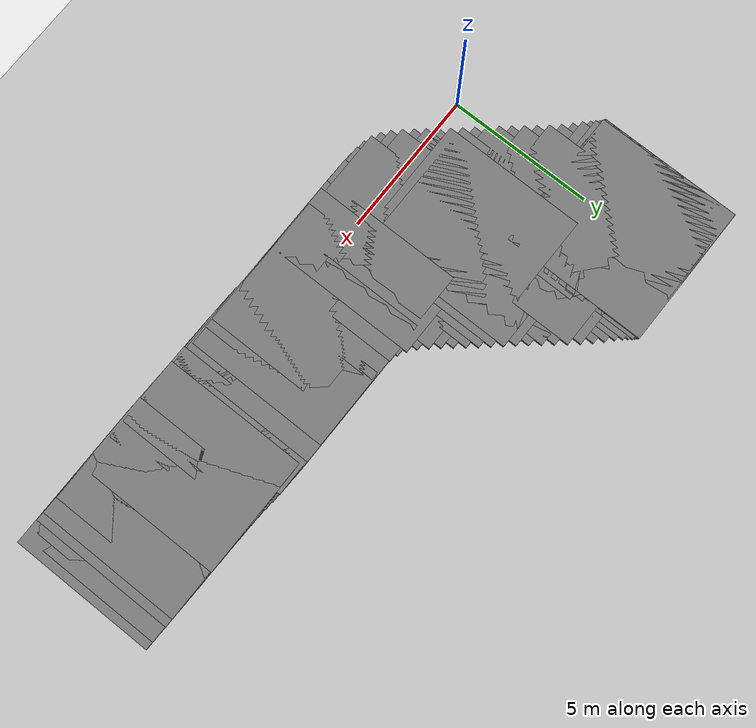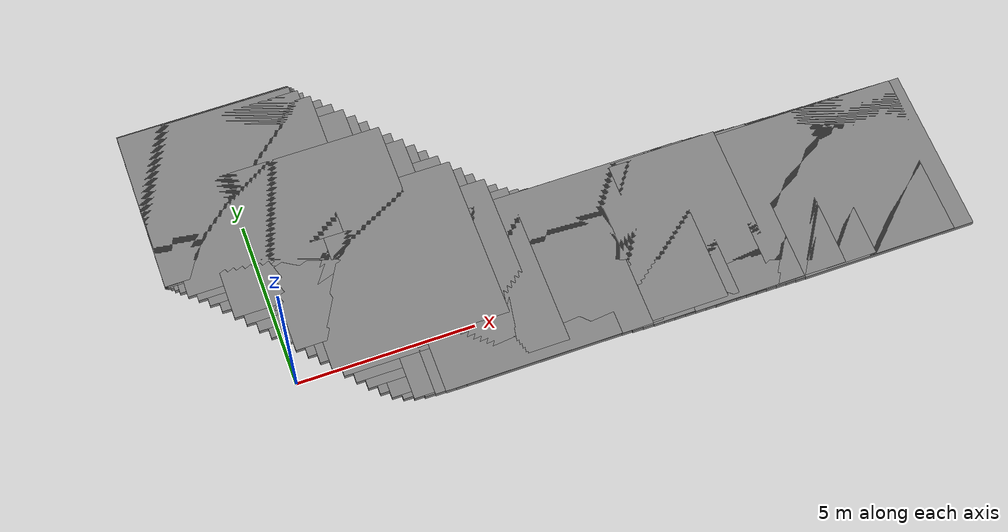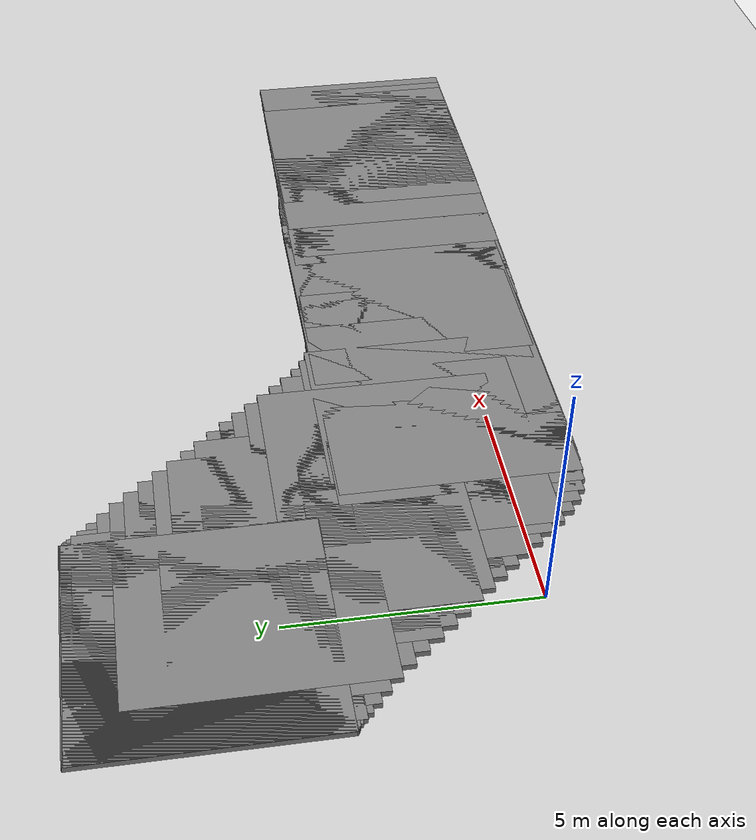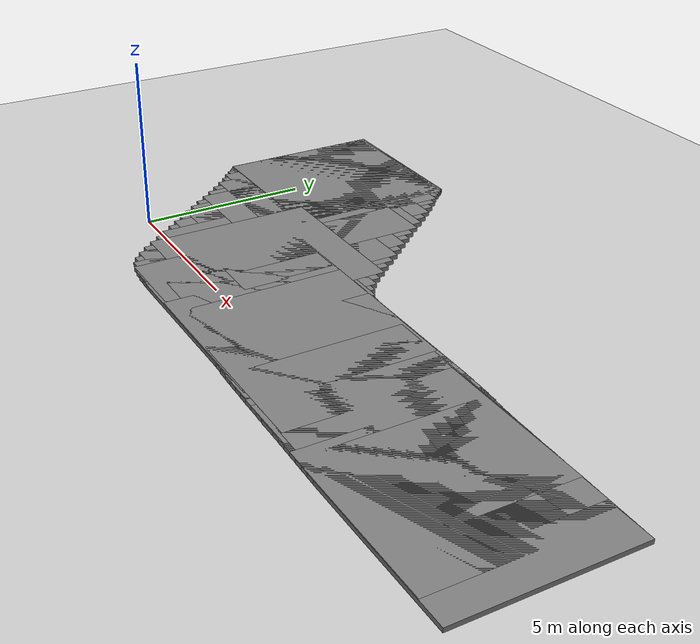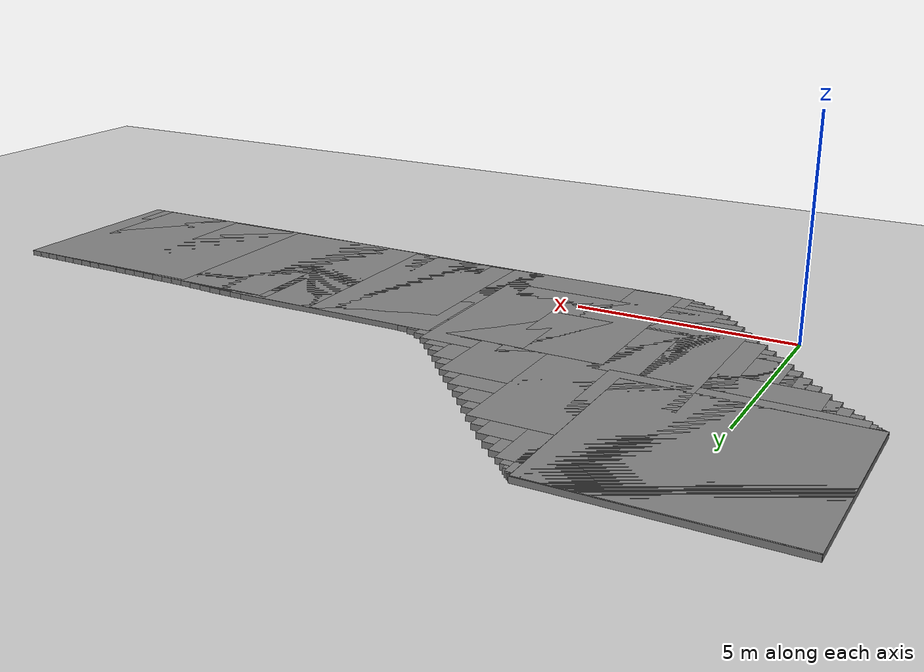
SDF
<sdf version="1.6">
 <world name="default">
  <include><uri>model://sun</uri></include>
  <include><uri>model://ground_plane</uri></include>
  <model name="road_segment_718">
   <static>true</static>
   <link name="link">
    <visual name="visual">
     <geometry><box><size>5.0 5.0 0.2</size></box></geometry>
     <material><ambient>0.5 0.5 0.5 1</ambient><diffuse>0.5 0.5 0.5 1</diffuse></material>
     <pose>16.38964202013392 0.7599901936794916 0.0 0 0 0</pose>
    </visual>
    <collision name="collision">
     <geometry><box><size>5.0 5.0 0.2</size></box></geometry>
     <pose>16.38964202013392 0.7599901936794916 0.0 0 0 0</pose>
    </collision>
   </link>
  </model>
  <model name="road_segment_719">
   <static>true</static>
   <link name="link">
    <visual name="visual">
     <geometry><box><size>5.0 5.0 0.2</size></box></geometry>
     <material><ambient>0.5 0.5 0.5 1</ambient><diffuse>0.5 0.5 0.5 1</diffuse></material>
     <pose>16.107715638061258 0.7657105499774945 0.0 0 0 0</pose>
    </visual>
    <collision name="collision">
     <geometry><box><size>5.0 5.0 0.2</size></box></geometry>
     <pose>16.107715638061258 0.7657105499774945 0.0 0 0 0</pose>
    </collision>
   </link>
  </model>
  <model name="road_segment_720">
   <static>true</static>
   <link name="link">
    <visual name="visual">
     <geometry><box><size>5.0 5.0 0.2</size></box></geometry>
     <material><ambient>0.5 0.5 0.5 1</ambient><diffuse>0.5 0.5 0.5 1</diffuse></material>
     <pose>15.826019024860138 0.7718395031513341 0.0 0 0 0</pose>
    </visual>
    <collision name="collision">
     <geometry><box><size>5.0 5.0 0.2</size></box></geometry>
     <pose>15.826019024860138 0.7718395031513341 0.0 0 0 0</pose>
    </collision>
   </link>
  </model>
  <model name="road_segment_721">
   <static>true</static>
   <link name="link">
    <visual name="visual">
     <geometry><box><size>5.0 5.0 0.2</size></box></geometry>
     <material><ambient>0.5 0.5 0.5 1</ambient><diffuse>0.5 0.5 0.5 1</diffuse></material>
     <pose>15.54156518542904 0.7771512625662423 0.0 0 0 0</pose>
    </visual>
    <collision name="collision">
     <geometry><box><size>5.0 5.0 0.2</size></box></geometry>
     <pose>15.54156518542904 0.7771512625662423 0.0 0 0 0</pose>
    </collision>
   </link>
  </model>
  <model name="road_segment_722">
   <static>true</static>
   <link name="link">
    <visual name="visual">
     <geometry><box><size>5.0 5.0 0.2</size></box></geometry>
     <material><ambient>0.5 0.5 0.5 1</ambient><diffuse>0.5 0.5 0.5 1</diffuse></material>
     <pose>15.252975506636643 0.7832802157400818 0.0 0 0 0</pose>
    </visual>
    <collision name="collision">
     <geometry><box><size>5.0 5.0 0.2</size></box></geometry>
     <pose>15.252975506636643 0.7832802157400818 0.0 0 0 0</pose>
    </collision>
   </link>
  </model>
  <model name="road_segment_723">
   <static>true</static>
   <link name="link">
    <visual name="visual">
     <geometry><box><size>5.0 5.0 0.2</size></box></geometry>
     <material><ambient>0.5 0.5 0.5 1</ambient><diffuse>0.5 0.5 0.5 1</diffuse></material>
     <pose>14.963466752456023 0.7890005720380847 0.0 0 0 0</pose>
    </visual>
    <collision name="collision">
     <geometry><box><size>5.0 5.0 0.2</size></box></geometry>
     <pose>14.963466752456023 0.7890005720380847 0.0 0 0 0</pose>
    </collision>
   </link>
  </model>
  <model name="road_segment_724">
   <static>true</static>
   <link name="link">
    <visual name="visual">
     <geometry><box><size>5.0 5.0 0.2</size></box></geometry>
     <material><ambient>0.5 0.5 0.5 1</ambient><diffuse>0.5 0.5 0.5 1</diffuse></material>
     <pose>14.674417535953186 0.7947209283360877 0.0 0 0 0</pose>
    </visual>
    <collision name="collision">
     <geometry><box><size>5.0 5.0 0.2</size></box></geometry>
     <pose>14.674417535953186 0.7947209283360877 0.0 0 0 0</pose>
    </collision>
   </link>
  </model>
  <model name="road_segment_725">
   <static>true</static>
   <link name="link">
    <visual name="visual">
     <geometry><box><size>5.0 5.0 0.2</size></box></geometry>
     <material><ambient>0.5 0.5 0.5 1</ambient><diffuse>0.5 0.5 0.5 1</diffuse></material>
     <pose>14.384449244062125 0.8004412846340908 0.0 0 0 0</pose>
    </visual>
    <collision name="collision">
     <geometry><box><size>5.0 5.0 0.2</size></box></geometry>
     <pose>14.384449244062125 0.8004412846340908 0.0 0 0 0</pose>
    </collision>
   </link>
  </model>
  <model name="road_segment_726">
   <static>true</static>
   <link name="link">
    <visual name="visual">
     <geometry><box><size>5.0 5.0 0.2</size></box></geometry>
     <material><ambient>0.5 0.5 0.5 1</ambient><diffuse>0.5 0.5 0.5 1</diffuse></material>
     <pose>14.093561876750188 0.8057530440489988 0.0 0 0 0</pose>
    </visual>
    <collision name="collision">
     <geometry><box><size>5.0 5.0 0.2</size></box></geometry>
     <pose>14.093561876750188 0.8057530440489988 0.0 0 0 0</pose>
    </collision>
   </link>
  </model>
  <model name="road_segment_727">
   <static>true</static>
   <link name="link">
    <visual name="visual">
     <geometry><box><size>5.0 5.0 0.2</size></box></geometry>
     <material><ambient>0.5 0.5 0.5 1</ambient><diffuse>0.5 0.5 0.5 1</diffuse></material>
     <pose>13.796470750428954 0.8037100596552996 0.0 0 0 0</pose>
    </visual>
    <collision name="collision">
     <geometry><box><size>5.0 5.0 0.2</size></box></geometry>
     <pose>13.796470750428954 0.8037100596552996 0.0 0 0 0</pose>
    </collision>
   </link>
  </model>
  <model name="road_segment_728">
   <static>true</static>
   <link name="link">
    <visual name="visual">
     <geometry><box><size>5.0 5.0 0.2</size></box></geometry>
     <material><ambient>0.5 0.5 0.5 1</ambient><diffuse>0.5 0.5 0.5 1</diffuse></material>
     <pose>13.50190708149881 0.811473400347002 0.0 0 0 0</pose>
    </visual>
    <collision name="collision">
     <geometry><box><size>5.0 5.0 0.2</size></box></geometry>
     <pose>13.50190708149881 0.811473400347002 0.0 0 0 0</pose>
    </collision>
   </link>
  </model>
  <model name="road_segment_729">
   <static>true</static>
   <link name="link">
    <visual name="visual">
     <geometry><box><size>5.0 5.0 0.2</size></box></geometry>
     <material><ambient>0.5 0.5 0.5 1</ambient><diffuse>0.5 0.5 0.5 1</diffuse></material>
     <pose>13.205275492855364 0.8196453379145408 0.0 0 0 0</pose>
    </visual>
    <collision name="collision">
     <geometry><box><size>5.0 5.0 0.2</size></box></geometry>
     <pose>13.205275492855364 0.8196453379145408 0.0 0 0 0</pose>
    </collision>
   </link>
  </model>
  <model name="road_segment_730">
   <static>true</static>
   <link name="link">
    <visual name="visual">
     <geometry><box><size>5.0 5.0 0.2</size></box></geometry>
     <material><ambient>0.5 0.5 0.5 1</ambient><diffuse>0.5 0.5 0.5 1</diffuse></material>
     <pose>12.906575984563926 0.8208711285493087 0.0 0 0 0</pose>
    </visual>
    <collision name="collision">
     <geometry><box><size>5.0 5.0 0.2</size></box></geometry>
     <pose>12.906575984563926 0.8208711285493087 0.0 0 0 0</pose>
    </collision>
   </link>
  </model>
  <model name="road_segment_731">
   <static>true</static>
   <link name="link">
    <visual name="visual">
     <geometry><box><size>5.0 5.0 0.2</size></box></geometry>
     <material><ambient>0.5 0.5 0.5 1</ambient><diffuse>0.5 0.5 0.5 1</diffuse></material>
     <pose>12.609255089403797 0.8261828879642167 0.0 0 0 0</pose>
    </visual>
    <collision name="collision">
     <geometry><box><size>5.0 5.0 0.2</size></box></geometry>
     <pose>12.609255089403797 0.8261828879642167 0.0 0 0 0</pose>
    </collision>
   </link>
  </model>
  <model name="road_segment_732">
   <static>true</static>
   <link name="link">
    <visual name="visual">
     <geometry><box><size>5.0 5.0 0.2</size></box></geometry>
     <material><ambient>0.5 0.5 0.5 1</ambient><diffuse>0.5 0.5 0.5 1</diffuse></material>
     <pose>12.307109048300392 0.835172019290687 0.0 0 0 0</pose>
    </visual>
    <collision name="collision">
     <geometry><box><size>5.0 5.0 0.2</size></box></geometry>
     <pose>12.307109048300392 0.835172019290687 0.0 0 0 0</pose>
    </collision>
   </link>
  </model>
  <model name="road_segment_733">
   <static>true</static>
   <link name="link">
    <visual name="visual">
     <geometry><box><size>5.0 5.0 0.2</size></box></geometry>
     <material><ambient>0.5 0.5 0.5 1</ambient><diffuse>0.5 0.5 0.5 1</diffuse></material>
     <pose>12.00680115803874 0.8392579880708271 0.0 0 0 0</pose>
    </visual>
    <collision name="collision">
     <geometry><box><size>5.0 5.0 0.2</size></box></geometry>
     <pose>12.00680115803874 0.8392579880708271 0.0 0 0 0</pose>
    </collision>
   </link>
  </model>
  <model name="road_segment_734">
   <static>true</static>
   <link name="link">
    <visual name="visual">
     <geometry><box><size>5.0 5.0 0.2</size></box></geometry>
     <material><ambient>0.5 0.5 0.5 1</ambient><diffuse>0.5 0.5 0.5 1</diffuse></material>
     <pose>11.704655116967986 0.8470213287625294 0.0 0 0 0</pose>
    </visual>
    <collision name="collision">
     <geometry><box><size>5.0 5.0 0.2</size></box></geometry>
     <pose>11.704655116967986 0.8470213287625294 0.0 0 0 0</pose>
    </collision>
   </link>
  </model>
  <model name="road_segment_735">
   <static>true</static>
   <link name="link">
    <visual name="visual">
     <geometry><box><size>5.0 5.0 0.2</size></box></geometry>
     <material><ambient>0.5 0.5 0.5 1</ambient><diffuse>0.5 0.5 0.5 1</diffuse></material>
     <pose>11.402049538186795 0.8588706382343719 0.0 0 0 0</pose>
    </visual>
    <collision name="collision">
     <geometry><box><size>5.0 5.0 0.2</size></box></geometry>
     <pose>11.402049538186795 0.8588706382343719 0.0 0 0 0</pose>
    </collision>
   </link>
  </model>
  <model name="road_segment_736">
   <static>true</static>
   <link name="link">
    <visual name="visual">
     <geometry><box><size>5.0 5.0 0.2</size></box></geometry>
     <material><ambient>0.5 0.5 0.5 1</ambient><diffuse>0.5 0.5 0.5 1</diffuse></material>
     <pose>11.094848582333865 0.8805262727843577 0.0 0 0 0</pose>
    </visual>
    <collision name="collision">
     <geometry><box><size>5.0 5.0 0.2</size></box></geometry>
     <pose>11.094848582333865 0.8805262727843577 0.0 0 0 0</pose>
    </collision>
   </link>
  </model>
  <model name="road_segment_737">
   <static>true</static>
   <link name="link">
    <visual name="visual">
     <geometry><box><size>5.0 5.0 0.2</size></box></geometry>
     <material><ambient>0.5 0.5 0.5 1</ambient><diffuse>0.5 0.5 0.5 1</diffuse></material>
     <pose>10.782592711731413 0.9095366511429509 0.0 0 0 0</pose>
    </visual>
    <collision name="collision">
     <geometry><box><size>5.0 5.0 0.2</size></box></geometry>
     <pose>10.782592711731413 0.9095366511429509 0.0 0 0 0</pose>
    </collision>
   </link>
  </model>
  <model name="road_segment_738">
   <static>true</static>
   <link name="link">
    <visual name="visual">
     <geometry><box><size>5.0 5.0 0.2</size></box></geometry>
     <material><ambient>0.5 0.5 0.5 1</ambient><diffuse>0.5 0.5 0.5 1</diffuse></material>
     <pose>10.47125591654984 0.9279235106644695 0.0 0 0 0</pose>
    </visual>
    <collision name="collision">
     <geometry><box><size>5.0 5.0 0.2</size></box></geometry>
     <pose>10.47125591654984 0.9279235106644695 0.0 0 0 0</pose>
    </collision>
   </link>
  </model>
  <model name="road_segment_739">
   <static>true</static>
   <link name="link">
    <visual name="visual">
     <geometry><box><size>5.0 5.0 0.2</size></box></geometry>
     <material><ambient>0.5 0.5 0.5 1</ambient><diffuse>0.5 0.5 0.5 1</diffuse></material>
     <pose>10.158540508269601 0.9373212388667762 0.0 0 0 0</pose>
    </visual>
    <collision name="collision">
     <geometry><box><size>5.0 5.0 0.2</size></box></geometry>
     <pose>10.158540508269601 0.9373212388667762 0.0 0 0 0</pose>
    </collision>
   </link>
  </model>
  <model name="road_segment_740">
   <static>true</static>
   <link name="link">
    <visual name="visual">
     <geometry><box><size>5.0 5.0 0.2</size></box></geometry>
     <material><ambient>0.5 0.5 0.5 1</ambient><diffuse>0.5 0.5 0.5 1</diffuse></material>
     <pose>9.845365562246272 0.9495791452217134 0.0 0 0 0</pose>
    </visual>
    <collision name="collision">
     <geometry><box><size>5.0 5.0 0.2</size></box></geometry>
     <pose>9.845365562246272 0.9495791452217134 0.0 0 0 0</pose>
    </collision>
   </link>
  </model>
  <model name="road_segment_741">
   <static>true</static>
   <link name="link">
    <visual name="visual">
     <geometry><box><size>5.0 5.0 0.2</size></box></geometry>
     <material><ambient>0.5 0.5 0.5 1</ambient><diffuse>0.5 0.5 0.5 1</diffuse></material>
     <pose>9.529203621154068 0.9561166952713895 0.0 0 0 0</pose>
    </visual>
    <collision name="collision">
     <geometry><box><size>5.0 5.0 0.2</size></box></geometry>
     <pose>9.529203621154068 0.9561166952713895 0.0 0 0 0</pose>
    </collision>
   </link>
  </model>
  <model name="road_segment_742">
   <static>true</static>
   <link name="link">
    <visual name="visual">
     <geometry><box><size>5.0 5.0 0.2</size></box></geometry>
     <material><ambient>0.5 0.5 0.5 1</ambient><diffuse>0.5 0.5 0.5 1</diffuse></material>
     <pose>9.20936537844366 0.9557080983955529 0.0 0 0 0</pose>
    </visual>
    <collision name="collision">
     <geometry><box><size>5.0 5.0 0.2</size></box></geometry>
     <pose>9.20936537844366 0.9557080983955529 0.0 0 0 0</pose>
    </collision>
   </link>
  </model>
  <model name="road_segment_743">
   <static>true</static>
   <link name="link">
    <visual name="visual">
     <geometry><box><size>5.0 5.0 0.2</size></box></geometry>
     <material><ambient>0.5 0.5 0.5 1</ambient><diffuse>0.5 0.5 0.5 1</diffuse></material>
     <pose>8.889756904572144 0.9508049358564813 0.0 0 0 0</pose>
    </visual>
    <collision name="collision">
     <geometry><box><size>5.0 5.0 0.2</size></box></geometry>
     <pose>8.889756904572144 0.9508049358564813 0.0 0 0 0</pose>
    </collision>
   </link>
  </model>
  <model name="road_segment_744">
   <static>true</static>
   <link name="link">
    <visual name="visual">
     <geometry><box><size>5.0 5.0 0.2</size></box></geometry>
     <material><ambient>0.5 0.5 0.5 1</ambient><diffuse>0.5 0.5 0.5 1</diffuse></material>
     <pose>8.570148430700627 0.944267385799547 0.0 0 0 0</pose>
    </visual>
    <collision name="collision">
     <geometry><box><size>5.0 5.0 0.2</size></box></geometry>
     <pose>8.570148430700627 0.944267385799547 0.0 0 0 0</pose>
    </collision>
   </link>
  </model>
  <model name="road_segment_745">
   <static>true</static>
   <link name="link">
    <visual name="visual">
     <geometry><box><size>5.0 5.0 0.2</size></box></geometry>
     <material><ambient>0.5 0.5 0.5 1</ambient><diffuse>0.5 0.5 0.5 1</diffuse></material>
     <pose>8.250769725668006 0.9352782544803351 0.0 0 0 0</pose>
    </visual>
    <collision name="collision">
     <geometry><box><size>5.0 5.0 0.2</size></box></geometry>
     <pose>8.250769725668006 0.9352782544803351 0.0 0 0 0</pose>
    </collision>
   </link>
  </model>
  <model name="road_segment_746">
   <static>true</static>
   <link name="link">
    <visual name="visual">
     <geometry><box><size>5.0 5.0 0.2</size></box></geometry>
     <material><ambient>0.5 0.5 0.5 1</ambient><diffuse>0.5 0.5 0.5 1</diffuse></material>
     <pose>7.934148246865363 0.9238375418843292 0.0 0 0 0</pose>
    </visual>
    <collision name="collision">
     <geometry><box><size>5.0 5.0 0.2</size></box></geometry>
     <pose>7.934148246865363 0.9238375418843292 0.0 0 0 0</pose>
    </collision>
   </link>
  </model>
  <model name="road_segment_747">
   <static>true</static>
   <link name="link">
    <visual name="visual">
     <geometry><box><size>5.0 5.0 0.2</size></box></geometry>
     <material><ambient>0.5 0.5 0.5 1</ambient><diffuse>0.5 0.5 0.5 1</diffuse></material>
     <pose>7.62235191397335 0.9132140230472546 0.0 0 0 0</pose>
    </visual>
    <collision name="collision">
     <geometry><box><size>5.0 5.0 0.2</size></box></geometry>
     <pose>7.62235191397335 0.9132140230472546 0.0 0 0 0</pose>
    </collision>
   </link>
  </model>
  <model name="road_segment_748">
   <static>true</static>
   <link name="link">
    <visual name="visual">
     <geometry><box><size>5.0 5.0 0.2</size></box></geometry>
     <material><ambient>0.5 0.5 0.5 1</ambient><diffuse>0.5 0.5 0.5 1</diffuse></material>
     <pose>7.316529571251738 0.8989131323058763 0.0 0 0 0</pose>
    </visual>
    <collision name="collision">
     <geometry><box><size>5.0 5.0 0.2</size></box></geometry>
     <pose>7.316529571251738 0.8989131323058763 0.0 0 0 0</pose>
    </collision>
   </link>
  </model>
  <model name="road_segment_749">
   <static>true</static>
   <link name="link">
    <visual name="visual">
     <geometry><box><size>5.0 5.0 0.2</size></box></geometry>
     <material><ambient>0.5 0.5 0.5 1</ambient><diffuse>0.5 0.5 0.5 1</diffuse></material>
     <pose>7.015072836730315 0.8874724197171285 0.0 0 0 0</pose>
    </visual>
    <collision name="collision">
     <geometry><box><size>5.0 5.0 0.2</size></box></geometry>
     <pose>7.015072836730315 0.8874724197171285 0.0 0 0 0</pose>
    </collision>
   </link>
  </model>
  <model name="road_segment_750">
   <static>true</static>
   <link name="link">
    <visual name="visual">
     <geometry><box><size>5.0 5.0 0.2</size></box></geometry>
     <material><ambient>0.5 0.5 0.5 1</ambient><diffuse>0.5 0.5 0.5 1</diffuse></material>
     <pose>6.714764946468664 0.8866552259581972 0.0 0 0 0</pose>
    </visual>
    <collision name="collision">
     <geometry><box><size>5.0 5.0 0.2</size></box></geometry>
     <pose>6.714764946468664 0.8866552259581972 0.0 0 0 0</pose>
    </collision>
   </link>
  </model>
  <model name="road_segment_751">
   <static>true</static>
   <link name="link">
    <visual name="visual">
     <geometry><box><size>5.0 5.0 0.2</size></box></geometry>
     <material><ambient>0.5 0.5 0.5 1</ambient><diffuse>0.5 0.5 0.5 1</diffuse></material>
     <pose>6.421350121798292 0.8899240009866644 0.0 0 0 0</pose>
    </visual>
    <collision name="collision">
     <geometry><box><size>5.0 5.0 0.2</size></box></geometry>
     <pose>6.421350121798292 0.8899240009866644 0.0 0 0 0</pose>
    </collision>
   </link>
  </model>
  <model name="road_segment_752">
   <static>true</static>
   <link name="link">
    <visual name="visual">
     <geometry><box><size>5.0 5.0 0.2</size></box></geometry>
     <material><ambient>0.5 0.5 0.5 1</ambient><diffuse>0.5 0.5 0.5 1</diffuse></material>
     <pose>6.130922292196791 0.8952357604015726 0.0 0 0 0</pose>
    </visual>
    <collision name="collision">
     <geometry><box><size>5.0 5.0 0.2</size></box></geometry>
     <pose>6.130922292196791 0.8952357604015726 0.0 0 0 0</pose>
    </collision>
   </link>
  </model>
  <model name="road_segment_753">
   <static>true</static>
   <link name="link">
    <visual name="visual">
     <geometry><box><size>5.0 5.0 0.2</size></box></geometry>
     <material><ambient>0.5 0.5 0.5 1</ambient><diffuse>0.5 0.5 0.5 1</diffuse></material>
     <pose>5.846008915055253 0.9066764729975785 0.0 0 0 0</pose>
    </visual>
    <collision name="collision">
     <geometry><box><size>5.0 5.0 0.2</size></box></geometry>
     <pose>5.846008915055253 0.9066764729975785 0.0 0 0 0</pose>
    </collision>
   </link>
  </model>
  <model name="road_segment_754">
   <static>true</static>
   <link name="link">
    <visual name="visual">
     <geometry><box><size>5.0 5.0 0.2</size></box></geometry>
     <material><ambient>0.5 0.5 0.5 1</ambient><diffuse>0.5 0.5 0.5 1</diffuse></material>
     <pose>5.561784844463047 0.9311922856929367 0.0 0 0 0</pose>
    </visual>
    <collision name="collision">
     <geometry><box><size>5.0 5.0 0.2</size></box></geometry>
     <pose>5.561784844463047 0.9311922856929367 0.0 0 0 0</pose>
    </collision>
   </link>
  </model>
  <model name="road_segment_755">
   <static>true</static>
   <link name="link">
    <visual name="visual">
     <geometry><box><size>5.0 5.0 0.2</size></box></geometry>
     <material><ambient>0.5 0.5 0.5 1</ambient><diffuse>0.5 0.5 0.5 1</diffuse></material>
     <pose>5.280777537811261 0.9745035547929082 0.0 0 0 0</pose>
    </visual>
    <collision name="collision">
     <geometry><box><size>5.0 5.0 0.2</size></box></geometry>
     <pose>5.280777537811261 0.9745035547929082 0.0 0 0 0</pose>
    </collision>
   </link>
  </model>
  <model name="road_segment_756">
   <static>true</static>
   <link name="link">
    <visual name="visual">
     <geometry><box><size>5.0 5.0 0.2</size></box></geometry>
     <material><ambient>0.5 0.5 0.5 1</ambient><diffuse>0.5 0.5 0.5 1</diffuse></material>
     <pose>5.005973990168767 1.0541799460673384 0.0 0 0 0</pose>
    </visual>
    <collision name="collision">
     <geometry><box><size>5.0 5.0 0.2</size></box></geometry>
     <pose>5.005973990168767 1.0541799460673384 0.0 0 0 0</pose>
    </collision>
   </link>
  </model>
  <model name="road_segment_757">
   <static>true</static>
   <link name="link">
    <visual name="visual">
     <geometry><box><size>5.0 5.0 0.2</size></box></geometry>
     <material><ambient>0.5 0.5 0.5 1</ambient><diffuse>0.5 0.5 0.5 1</diffuse></material>
     <pose>4.736225357308449 1.2004576285095887 0.0 0 0 0</pose>
    </visual>
    <collision name="collision">
     <geometry><box><size>5.0 5.0 0.2</size></box></geometry>
     <pose>4.736225357308449 1.2004576285095887 0.0 0 0 0</pose>
    </collision>
   </link>
  </model>
  <model name="road_segment_758">
   <static>true</static>
   <link name="link">
    <visual name="visual">
     <geometry><box><size>5.0 5.0 0.2</size></box></geometry>
     <material><ambient>0.5 0.5 0.5 1</ambient><diffuse>0.5 0.5 0.5 1</diffuse></material>
     <pose>4.480952162147366 1.4100678270839335 0.0 0 0 0</pose>
    </visual>
    <collision name="collision">
     <geometry><box><size>5.0 5.0 0.2</size></box></geometry>
     <pose>4.480952162147366 1.4100678270839335 0.0 0 0 0</pose>
    </collision>
   </link>
  </model>
  <model name="road_segment_759">
   <static>true</static>
   <link name="link">
    <visual name="visual">
     <geometry><box><size>5.0 5.0 0.2</size></box></geometry>
     <material><ambient>0.5 0.5 0.5 1</ambient><diffuse>0.5 0.5 0.5 1</diffuse></material>
     <pose>4.2344101833540115 1.6691182479393476 0.0 0 0 0</pose>
    </visual>
    <collision name="collision">
     <geometry><box><size>5.0 5.0 0.2</size></box></geometry>
     <pose>4.2344101833540115 1.6691182479393476 0.0 0 0 0</pose>
    </collision>
   </link>
  </model>
  <model name="road_segment_760">
   <static>true</static>
   <link name="link">
    <visual name="visual">
     <geometry><box><size>5.0 5.0 0.2</size></box></geometry>
     <material><ambient>0.5 0.5 0.5 1</ambient><diffuse>0.5 0.5 0.5 1</diffuse></material>
     <pose>3.993612425924816 1.9465555283162805 0.0 0 0 0</pose>
    </visual>
    <collision name="collision">
     <geometry><box><size>5.0 5.0 0.2</size></box></geometry>
     <pose>3.993612425924816 1.9465555283162805 0.0 0 0 0</pose>
    </collision>
   </link>
  </model>
  <model name="road_segment_761">
   <static>true</static>
   <link name="link">
    <visual name="visual">
     <geometry><box><size>5.0 5.0 0.2</size></box></geometry>
     <material><ambient>0.5 0.5 0.5 1</ambient><diffuse>0.5 0.5 0.5 1</diffuse></material>
     <pose>3.749368135651004 2.234207730654451 0.0 0 0 0</pose>
    </visual>
    <collision name="collision">
     <geometry><box><size>5.0 5.0 0.2</size></box></geometry>
     <pose>3.749368135651004 2.234207730654451 0.0 0 0 0</pose>
    </collision>
   </link>
  </model>
  <model name="road_segment_762">
   <static>true</static>
   <link name="link">
    <visual name="visual">
     <geometry><box><size>5.0 5.0 0.2</size></box></geometry>
     <material><ambient>0.5 0.5 0.5 1</ambient><diffuse>0.5 0.5 0.5 1</diffuse></material>
     <pose>3.5069619962515985 2.530849064319092 0.0 0 0 0</pose>
    </visual>
    <collision name="collision">
     <geometry><box><size>5.0 5.0 0.2</size></box></geometry>
     <pose>3.5069619962515985 2.530849064319092 0.0 0 0 0</pose>
    </collision>
   </link>
  </model>
  <model name="road_segment_763">
   <static>true</static>
   <link name="link">
    <visual name="visual">
     <geometry><box><size>5.0 5.0 0.2</size></box></geometry>
     <material><ambient>0.5 0.5 0.5 1</ambient><diffuse>0.5 0.5 0.5 1</diffuse></material>
     <pose>3.264555856819541 2.823404429196334 0.0 0 0 0</pose>
    </visual>
    <collision name="collision">
     <geometry><box><size>5.0 5.0 0.2</size></box></geometry>
     <pose>3.264555856819541 2.823404429196334 0.0 0 0 0</pose>
    </collision>
   </link>
  </model>
  <model name="road_segment_764">
   <static>true</static>
   <link name="link">
    <visual name="visual">
     <geometry><box><size>5.0 5.0 0.2</size></box></geometry>
     <material><ambient>0.5 0.5 0.5 1</ambient><diffuse>0.5 0.5 0.5 1</diffuse></material>
     <pose>3.0175543403484 3.1094222440166424 0.0 0 0 0</pose>
    </visual>
    <collision name="collision">
     <geometry><box><size>5.0 5.0 0.2</size></box></geometry>
     <pose>3.0175543403484 3.1094222440166424 0.0 0 0 0</pose>
    </collision>
   </link>
  </model>
  <model name="road_segment_765">
   <static>true</static>
   <link name="link">
    <visual name="visual">
     <geometry><box><size>5.0 5.0 0.2</size></box></geometry>
     <material><ambient>0.5 0.5 0.5 1</ambient><diffuse>0.5 0.5 0.5 1</diffuse></material>
     <pose>2.76572767796663 3.3974830432306495 0.0 0 0 0</pose>
    </visual>
    <collision name="collision">
     <geometry><box><size>5.0 5.0 0.2</size></box></geometry>
     <pose>2.76572767796663 3.3974830432306495 0.0 0 0 0</pose>
    </collision>
   </link>
  </model>
  <model name="road_segment_766">
   <static>true</static>
   <link name="link">
    <visual name="visual">
     <geometry><box><size>5.0 5.0 0.2</size></box></geometry>
     <material><ambient>0.5 0.5 0.5 1</ambient><diffuse>0.5 0.5 0.5 1</diffuse></material>
     <pose>2.514360553295299 3.6814578736645167 0.0 0 0 0</pose>
    </visual>
    <collision name="collision">
     <geometry><box><size>5.0 5.0 0.2</size></box></geometry>
     <pose>2.514360553295299 3.6814578736645167 0.0 0 0 0</pose>
    </collision>
   </link>
  </model>
  <model name="road_segment_767">
   <static>true</static>
   <link name="link">
    <visual name="visual">
     <geometry><box><size>5.0 5.0 0.2</size></box></geometry>
     <material><ambient>0.5 0.5 0.5 1</ambient><diffuse>0.5 0.5 0.5 1</diffuse></material>
     <pose>2.2623041220746347 3.976464819811295 0.0 0 0 0</pose>
    </visual>
    <collision name="collision">
     <geometry><box><size>5.0 5.0 0.2</size></box></geometry>
     <pose>2.2623041220746347 3.976464819811295 0.0 0 0 0</pose>
    </collision>
   </link>
  </model>
  <model name="road_segment_768">
   <static>true</static>
   <link name="link">
    <visual name="visual">
     <geometry><box><size>5.0 5.0 0.2</size></box></geometry>
     <material><ambient>0.5 0.5 0.5 1</ambient><diffuse>0.5 0.5 0.5 1</diffuse></material>
     <pose>2.0123156105019677 4.278417912890844 0.0 0 0 0</pose>
    </visual>
    <collision name="collision">
     <geometry><box><size>5.0 5.0 0.2</size></box></geometry>
     <pose>2.0123156105019677 4.278417912890844 0.0 0 0 0</pose>
    </collision>
   </link>
  </model>
  <model name="road_segment_769">
   <static>true</static>
   <link name="link">
    <visual name="visual">
     <geometry><box><size>5.0 5.0 0.2</size></box></geometry>
     <material><ambient>0.5 0.5 0.5 1</ambient><diffuse>0.5 0.5 0.5 1</diffuse></material>
     <pose>1.7597996415708657 4.583639780991602 0.0 0 0 0</pose>
    </visual>
    <collision name="collision">
     <geometry><box><size>5.0 5.0 0.2</size></box></geometry>
     <pose>1.7597996415708657 4.583639780991602 0.0 0 0 0</pose>
    </collision>
   </link>
  </model>
  <model name="road_segment_770">
   <static>true</static>
   <link name="link">
    <visual name="visual">
     <geometry><box><size>5.0 5.0 0.2</size></box></geometry>
     <material><ambient>0.5 0.5 0.5 1</ambient><diffuse>0.5 0.5 0.5 1</diffuse></material>
     <pose>1.5072836726397632 4.8851842771953145 0.0 0 0 0</pose>
    </visual>
    <collision name="collision">
     <geometry><box><size>5.0 5.0 0.2</size></box></geometry>
     <pose>1.5072836726397632 4.8851842771953145 0.0 0 0 0</pose>
    </collision>
   </link>
  </model>
  <model name="road_segment_771">
   <static>true</static>
   <link name="link">
    <visual name="visual">
     <geometry><box><size>5.0 5.0 0.2</size></box></geometry>
     <material><ambient>0.5 0.5 0.5 1</ambient><diffuse>0.5 0.5 0.5 1</diffuse></material>
     <pose>1.250861633218909 5.185911579640096 0.0 0 0 0</pose>
    </visual>
    <collision name="collision">
     <geometry><box><size>5.0 5.0 0.2</size></box></geometry>
     <pose>1.250861633218909 5.185911579640096 0.0 0 0 0</pose>
    </collision>
   </link>
  </model>
  <model name="road_segment_772">
   <static>true</static>
   <link name="link">
    <visual name="visual">
     <geometry><box><size>5.0 5.0 0.2</size></box></geometry>
     <material><ambient>0.5 0.5 0.5 1</ambient><diffuse>0.5 0.5 0.5 1</diffuse></material>
     <pose>0.9932907495056322 5.471929394460403 0.0 0 0 0</pose>
    </visual>
    <collision name="collision">
     <geometry><box><size>5.0 5.0 0.2</size></box></geometry>
     <pose>0.9932907495056322 5.471929394460403 0.0 0 0 0</pose>
    </collision>
   </link>
  </model>
  <model name="road_segment_773">
   <static>true</static>
   <link name="link">
    <visual name="visual">
     <geometry><box><size>5.0 5.0 0.2</size></box></geometry>
     <material><ambient>0.5 0.5 0.5 1</ambient><diffuse>0.5 0.5 0.5 1</diffuse></material>
     <pose>0.7435320068045104 5.721990683996606 0.0 0 0 0</pose>
    </visual>
    <collision name="collision">
     <geometry><box><size>5.0 5.0 0.2</size></box></geometry>
     <pose>0.7435320068045104 5.721990683996606 0.0 0 0 0</pose>
    </collision>
   </link>
  </model>
  <model name="road_segment_774">
   <static>true</static>
   <link name="link">
    <visual name="visual">
     <geometry><box><size>5.0 5.0 0.2</size></box></geometry>
     <material><ambient>0.5 0.5 0.5 1</ambient><diffuse>0.5 0.5 0.5 1</diffuse></material>
     <pose>0.5123845411639213 5.932418076329881 0.0 0 0 0</pose>
    </visual>
    <collision name="collision">
     <geometry><box><size>5.0 5.0 0.2</size></box></geometry>
     <pose>0.5123845411639213 5.932418076329881 0.0 0 0 0</pose>
    </collision>
   </link>
  </model>
  <model name="road_segment_775">
   <static>true</static>
   <link name="link">
    <visual name="visual">
     <geometry><box><size>5.0 5.0 0.2</size></box></geometry>
     <material><ambient>0.5 0.5 0.5 1</ambient><diffuse>0.5 0.5 0.5 1</diffuse></material>
     <pose>0.33867928864248725 6.111792105910865 0.0 0 0 0</pose>
    </visual>
    <collision name="collision">
     <geometry><box><size>5.0 5.0 0.2</size></box></geometry>
     <pose>0.33867928864248725 6.111792105910865 0.0 0 0 0</pose>
    </collision>
   </link>
  </model>
  <model name="road_segment_776">
   <static>true</static>
   <link name="link">
    <visual name="visual">
     <geometry><box><size>5.0 5.0 0.2</size></box></geometry>
     <material><ambient>0.5 0.5 0.5 1</ambient><diffuse>0.5 0.5 0.5 1</diffuse></material>
     <pose>0.22701162631194424 6.233145378774664 0.0 0 0 0</pose>
    </visual>
    <collision name="collision">
     <geometry><box><size>5.0 5.0 0.2</size></box></geometry>
     <pose>0.22701162631194424 6.233145378774664 0.0 0 0 0</pose>
    </collision>
   </link>
  </model>
  <model name="road_segment_777">
   <static>true</static>
   <link name="link">
    <visual name="visual">
     <geometry><box><size>5.0 5.0 0.2</size></box></geometry>
     <material><ambient>0.5 0.5 0.5 1</ambient><diffuse>0.5 0.5 0.5 1</diffuse></material>
     <pose>0.14544368367229524 6.327122660783213 0.0 0 0 0</pose>
    </visual>
    <collision name="collision">
     <geometry><box><size>5.0 5.0 0.2</size></box></geometry>
     <pose>0.14544368367229524 6.327122660783213 0.0 0 0 0</pose>
    </collision>
   </link>
  </model>
  <model name="road_segment_778">
   <static>true</static>
   <link name="link">
    <visual name="visual">
     <geometry><box><size>5.0 5.0 0.2</size></box></geometry>
     <material><ambient>0.5 0.5 0.5 1</ambient><diffuse>0.5 0.5 0.5 1</diffuse></material>
     <pose>0.08960985249069767 6.382691836238122 0.0 0 0 0</pose>
    </visual>
    <collision name="collision">
     <geometry><box><size>5.0 5.0 0.2</size></box></geometry>
     <pose>0.08960985249069767 6.382691836238122 0.0 0 0 0</pose>
    </collision>
   </link>
  </model>
  <model name="road_segment_779">
   <static>true</static>
   <link name="link">
    <visual name="visual">
     <geometry><box><size>5.0 5.0 0.2</size></box></geometry>
     <material><ambient>0.5 0.5 0.5 1</ambient><diffuse>0.5 0.5 0.5 1</diffuse></material>
     <pose>0.05353614266205568 6.407616245816575 0.0 0 0 0</pose>
    </visual>
    <collision name="collision">
     <geometry><box><size>5.0 5.0 0.2</size></box></geometry>
     <pose>0.05353614266205568 6.407616245816575 0.0 0 0 0</pose>
    </collision>
   </link>
  </model>
  <model name="road_segment_780">
   <static>true</static>
   <link name="link">
    <visual name="visual">
     <geometry><box><size>5.0 5.0 0.2</size></box></geometry>
     <material><ambient>0.5 0.5 0.5 1</ambient><diffuse>0.5 0.5 0.5 1</diffuse></material>
     <pose>0.024355498392039304 6.4260031053380935 0.0 0 0 0</pose>
    </visual>
    <collision name="collision">
     <geometry><box><size>5.0 5.0 0.2</size></box></geometry>
     <pose>0.024355498392039304 6.4260031053380935 0.0 0 0 0</pose>
    </collision>
   </link>
  </model>
  <model name="road_segment_781">
   <static>true</static>
   <link name="link">
    <visual name="visual">
     <geometry><box><size>5.0 5.0 0.2</size></box></geometry>
     <material><ambient>0.5 0.5 0.5 1</ambient><diffuse>0.5 0.5 0.5 1</diffuse></material>
     <pose>0.005744221331506788 6.453379096186082 0.0 0 0 0</pose>
    </visual>
    <collision name="collision">
     <geometry><box><size>5.0 5.0 0.2</size></box></geometry>
     <pose>0.005744221331506788 6.453379096186082 0.0 0 0 0</pose>
    </collision>
   </link>
  </model>
  <model name="road_segment_782">
   <static>true</static>
   <link name="link">
    <visual name="visual">
     <geometry><box><size>5.0 5.0 0.2</size></box></geometry>
     <material><ambient>0.5 0.5 0.5 1</ambient><diffuse>0.5 0.5 0.5 1</diffuse></material>
     <pose>0.006433527880838924 6.4697229713211595 0.0 0 0 0</pose>
    </visual>
    <collision name="collision">
     <geometry><box><size>5.0 5.0 0.2</size></box></geometry>
     <pose>0.006433527880838924 6.4697229713211595 0.0 0 0 0</pose>
    </collision>
   </link>
  </model>
  <model name="road_segment_783">
   <static>true</static>
   <link name="link">
    <visual name="visual">
     <geometry><box><size>5.0 5.0 0.2</size></box></geometry>
     <material><ambient>0.5 0.5 0.5 1</ambient><diffuse>0.5 0.5 0.5 1</diffuse></material>
     <pose>0.005744221331506788 6.472583149466532 0.0 0 0 0</pose>
    </visual>
    <collision name="collision">
     <geometry><box><size>5.0 5.0 0.2</size></box></geometry>
     <pose>0.005744221331506788 6.472583149466532 0.0 0 0 0</pose>
    </collision>
   </link>
  </model>
  <model name="road_segment_784">
   <static>true</static>
   <link name="link">
    <visual name="visual">
     <geometry><box><size>5.0 5.0 0.2</size></box></geometry>
     <material><ambient>0.5 0.5 0.5 1</ambient><diffuse>0.5 0.5 0.5 1</diffuse></material>
     <pose>0.005744221331506788 6.472583149466532 0.0 0 0 0</pose>
    </visual>
    <collision name="collision">
     <geometry><box><size>5.0 5.0 0.2</size></box></geometry>
     <pose>0.005744221331506788 6.472583149466532 0.0 0 0 0</pose>
    </collision>
   </link>
  </model>
  <model name="road_segment_785">
   <static>true</static>
   <link name="link">
    <visual name="visual">
     <geometry><box><size>5.0 5.0 0.2</size></box></geometry>
     <material><ambient>0.5 0.5 0.5 1</ambient><diffuse>0.5 0.5 0.5 1</diffuse></material>
     <pose>0.002067919680648528 6.4705401650728325 0.0 0 0 0</pose>
    </visual>
    <collision name="collision">
     <geometry><box><size>5.0 5.0 0.2</size></box></geometry>
     <pose>0.002067919680648528 6.4705401650728325 0.0 0 0 0</pose>
    </collision>
   </link>
  </model>
  <model name="road_segment_786">
   <static>true</static>
   <link name="link">
    <visual name="visual">
     <geometry><box><size>5.0 5.0 0.2</size></box></geometry>
     <material><ambient>0.5 0.5 0.5 1</ambient><diffuse>0.5 0.5 0.5 1</diffuse></material>
     <pose>0.001148844259770934 6.469314374438065 0.0 0 0 0</pose>
    </visual>
    <collision name="collision">
     <geometry><box><size>5.0 5.0 0.2</size></box></geometry>
     <pose>0.001148844259770934 6.469314374438065 0.0 0 0 0</pose>
    </collision>
   </link>
  </model>
  <model name="road_segment_787">
   <static>true</static>
   <link name="link">
    <visual name="visual">
     <geometry><box><size>5.0 5.0 0.2</size></box></geometry>
     <material><ambient>0.5 0.5 0.5 1</ambient><diffuse>0.5 0.5 0.5 1</diffuse></material>
     <pose>0.004135839361297056 6.468497180686391 0.0 0 0 0</pose>
    </visual>
    <collision name="collision">
     <geometry><box><size>5.0 5.0 0.2</size></box></geometry>
     <pose>0.004135839361297056 6.468497180686391 0.0 0 0 0</pose>
    </collision>
   </link>
  </model>
  <model name="road_segment_788">
   <static>true</static>
   <link name="link">
    <visual name="visual">
     <geometry><box><size>5.0 5.0 0.2</size></box></geometry>
     <material><ambient>0.5 0.5 0.5 1</ambient><diffuse>0.5 0.5 0.5 1</diffuse></material>
     <pose>0.0 6.464002615023157 0.0 0 0 0</pose>
    </visual>
    <collision name="collision">
     <geometry><box><size>5.0 5.0 0.2</size></box></geometry>
     <pose>0.0 6.464002615023157 0.0 0 0 0</pose>
    </collision>
   </link>
  </model>
  <model name="road_segment_789">
   <static>true</static>
   <link name="link">
    <visual name="visual">
     <geometry><box><size>5.0 5.0 0.2</size></box></geometry>
     <material><ambient>0.5 0.5 0.5 1</ambient><diffuse>0.5 0.5 0.5 1</diffuse></material>
     <pose>0.0006893065819842546 6.4623682275125525 0.0 0 0 0</pose>
    </visual>
    <collision name="collision">
     <geometry><box><size>5.0 5.0 0.2</size></box></geometry>
     <pose>0.0006893065819842546 6.4623682275125525 0.0 0 0 0</pose>
    </collision>
   </link>
  </model>
  <model name="road_segment_790">
   <static>true</static>
   <link name="link">
    <visual name="visual">
     <geometry><box><size>5.0 5.0 0.2</size></box></geometry>
     <material><ambient>0.5 0.5 0.5 1</ambient><diffuse>0.5 0.5 0.5 1</diffuse></material>
     <pose>0.002067919680648528 6.457465064966223 0.0 0 0 0</pose>
    </visual>
    <collision name="collision">
     <geometry><box><size>5.0 5.0 0.2</size></box></geometry>
     <pose>0.002067919680648528 6.457465064966223 0.0 0 0 0</pose>
    </collision>
   </link>
  </model>
  <model name="road_segment_791">
   <static>true</static>
   <link name="link">
    <visual name="visual">
     <geometry><box><size>5.0 5.0 0.2</size></box></geometry>
     <material><ambient>0.5 0.5 0.5 1</ambient><diffuse>0.5 0.5 0.5 1</diffuse></material>
     <pose>0.002297688552193986 6.452153305551314 0.0 0 0 0</pose>
    </visual>
    <collision name="collision">
     <geometry><box><size>5.0 5.0 0.2</size></box></geometry>
     <pose>0.002297688552193986 6.452153305551314 0.0 0 0 0</pose>
    </collision>
   </link>
  </model>
  <model name="road_segment_792">
   <static>true</static>
   <link name="link">
    <visual name="visual">
     <geometry><box><size>5.0 5.0 0.2</size></box></geometry>
     <material><ambient>0.5 0.5 0.5 1</ambient><diffuse>0.5 0.5 0.5 1</diffuse></material>
     <pose>0.0034465328119649198 6.45051891804071 0.0 0 0 0</pose>
    </visual>
    <collision name="collision">
     <geometry><box><size>5.0 5.0 0.2</size></box></geometry>
     <pose>0.0034465328119649198 6.45051891804071 0.0 0 0 0</pose>
    </collision>
   </link>
  </model>
  <model name="road_segment_793">
   <static>true</static>
   <link name="link">
    <visual name="visual">
     <geometry><box><size>5.0 5.0 0.2</size></box></geometry>
     <material><ambient>0.5 0.5 0.5 1</ambient><diffuse>0.5 0.5 0.5 1</diffuse></material>
     <pose>0.004825145910629193 6.447658739888079 0.0 0 0 0</pose>
    </visual>
    <collision name="collision">
     <geometry><box><size>5.0 5.0 0.2</size></box></geometry>
     <pose>0.004825145910629193 6.447658739888079 0.0 0 0 0</pose>
    </collision>
   </link>
  </model>
  <model name="road_segment_794">
   <static>true</static>
   <link name="link">
    <visual name="visual">
     <geometry><box><size>5.0 5.0 0.2</size></box></geometry>
     <material><ambient>0.5 0.5 0.5 1</ambient><diffuse>0.5 0.5 0.5 1</diffuse></material>
     <pose>0.006663296752384382 6.446432949253311 0.0 0 0 0</pose>
    </visual>
    <collision name="collision">
     <geometry><box><size>5.0 5.0 0.2</size></box></geometry>
     <pose>0.006663296752384382 6.446432949253311 0.0 0 0 0</pose>
    </collision>
   </link>
  </model>
  <model name="road_segment_795">
   <static>true</static>
   <link name="link">
    <visual name="visual">
     <geometry><box><size>5.0 5.0 0.2</size></box></geometry>
     <material><ambient>0.5 0.5 0.5 1</ambient><diffuse>0.5 0.5 0.5 1</diffuse></material>
     <pose>0.01079913608102932 6.443981367983776 0.0 0 0 0</pose>
    </visual>
    <collision name="collision">
     <geometry><box><size>5.0 5.0 0.2</size></box></geometry>
     <pose>0.01079913608102932 6.443981367983776 0.0 0 0 0</pose>
    </collision>
   </link>
  </model>
  <model name="road_segment_796">
   <static>true</static>
   <link name="link">
    <visual name="visual">
     <geometry><box><size>5.0 5.0 0.2</size></box></geometry>
     <material><ambient>0.5 0.5 0.5 1</ambient><diffuse>0.5 0.5 0.5 1</diffuse></material>
     <pose>0.008501447561487453 6.446841546136406 0.0 0 0 0</pose>
    </visual>
    <collision name="collision">
     <geometry><box><size>5.0 5.0 0.2</size></box></geometry>
     <pose>0.008501447561487453 6.446841546136406 0.0 0 0 0</pose>
    </collision>
   </link>
  </model>
  <model name="road_segment_797">
   <static>true</static>
   <link name="link">
    <visual name="visual">
     <geometry><box><size>5.0 5.0 0.2</size></box></geometry>
     <material><ambient>0.5 0.5 0.5 1</ambient><diffuse>0.5 0.5 0.5 1</diffuse></material>
     <pose>0.005973990170400127 6.447658739888079 0.0 0 0 0</pose>
    </visual>
    <collision name="collision">
     <geometry><box><size>5.0 5.0 0.2</size></box></geometry>
     <pose>0.005973990170400127 6.447658739888079 0.0 0 0 0</pose>
    </collision>
   </link>
  </model>
  <model name="road_segment_798">
   <static>true</static>
   <link name="link">
    <visual name="visual">
     <geometry><box><size>5.0 5.0 0.2</size></box></geometry>
     <material><ambient>0.5 0.5 0.5 1</ambient><diffuse>0.5 0.5 0.5 1</diffuse></material>
     <pose>0.0034465328119649198 6.444389964859612 0.0 0 0 0</pose>
    </visual>
    <collision name="collision">
     <geometry><box><size>5.0 5.0 0.2</size></box></geometry>
     <pose>0.0034465328119649198 6.444389964859612 0.0 0 0 0</pose>
    </collision>
   </link>
  </model>
  <model name="road_segment_799">
   <static>true</static>
   <link name="link">
    <visual name="visual">
     <geometry><box><size>5.0 5.0 0.2</size></box></geometry>
     <material><ambient>0.5 0.5 0.5 1</ambient><diffuse>0.5 0.5 0.5 1</diffuse></material>
     <pose>0.002297688552193986 6.4419383835900765 0.0 0 0 0</pose>
    </visual>
    <collision name="collision">
     <geometry><box><size>5.0 5.0 0.2</size></box></geometry>
     <pose>0.002297688552193986 6.4419383835900765 0.0 0 0 0</pose>
    </collision>
   </link>
  </model>
  <model name="road_segment_800">
   <static>true</static>
   <link name="link">
    <visual name="visual">
     <geometry><box><size>5.0 5.0 0.2</size></box></geometry>
     <material><ambient>0.5 0.5 0.5 1</ambient><diffuse>0.5 0.5 0.5 1</diffuse></material>
     <pose>0.0013786131313163915 6.439895399203635 0.0 0 0 0</pose>
    </visual>
    <collision name="collision">
     <geometry><box><size>5.0 5.0 0.2</size></box></geometry>
     <pose>0.0013786131313163915 6.439895399203635 0.0 0 0 0</pose>
    </collision>
   </link>
  </model>
  <model name="road_segment_801">
   <static>true</static>
   <link name="link">
    <visual name="visual">
     <geometry><box><size>5.0 5.0 0.2</size></box></geometry>
     <material><ambient>0.5 0.5 0.5 1</ambient><diffuse>0.5 0.5 0.5 1</diffuse></material>
     <pose>0.0006893065819842546 6.439078205444703 0.0 0 0 0</pose>
    </visual>
    <collision name="collision">
     <geometry><box><size>5.0 5.0 0.2</size></box></geometry>
     <pose>0.0006893065819842546 6.439078205444703 0.0 0 0 0</pose>
    </collision>
   </link>
  </model>
  <model name="road_segment_802">
   <static>true</static>
   <link name="link">
    <visual name="visual">
     <geometry><box><size>5.0 5.0 0.2</size></box></geometry>
     <material><ambient>0.5 0.5 0.5 1</ambient><diffuse>0.5 0.5 0.5 1</diffuse></material>
     <pose>0.0009190754208775944 6.437852414809936 0.0 0 0 0</pose>
    </visual>
    <collision name="collision">
     <geometry><box><size>5.0 5.0 0.2</size></box></geometry>
     <pose>0.0009190754208775944 6.437852414809936 0.0 0 0 0</pose>
    </collision>
   </link>
  </model>
  <model name="road_segment_803">
   <static>true</static>
   <link name="link">
    <visual name="visual">
     <geometry><box><size>5.0 5.0 0.2</size></box></geometry>
     <material><ambient>0.5 0.5 0.5 1</ambient><diffuse>0.5 0.5 0.5 1</diffuse></material>
     <pose>0.0018381508417551888 6.437852414809936 0.0 0 0 0</pose>
    </visual>
    <collision name="collision">
     <geometry><box><size>5.0 5.0 0.2</size></box></geometry>
     <pose>0.0018381508417551888 6.437852414809936 0.0 0 0 0</pose>
    </collision>
   </link>
  </model>
  <model name="road_segment_804">
   <static>true</static>
   <link name="link">
    <visual name="visual">
     <geometry><box><size>5.0 5.0 0.2</size></box></geometry>
     <material><ambient>0.5 0.5 0.5 1</ambient><diffuse>0.5 0.5 0.5 1</diffuse></material>
     <pose>0.0025274573910873256 6.437852414809936 0.0 0 0 0</pose>
    </visual>
    <collision name="collision">
     <geometry><box><size>5.0 5.0 0.2</size></box></geometry>
     <pose>0.0025274573910873256 6.437852414809936 0.0 0 0 0</pose>
    </collision>
   </link>
  </model>
  <model name="road_segment_805">
   <static>true</static>
   <link name="link">
    <visual name="visual">
     <geometry><box><size>5.0 5.0 0.2</size></box></geometry>
     <material><ambient>0.5 0.5 0.5 1</ambient><diffuse>0.5 0.5 0.5 1</diffuse></material>
     <pose>0.0029869951015261227 6.437852414809936 0.0 0 0 0</pose>
    </visual>
    <collision name="collision">
     <geometry><box><size>5.0 5.0 0.2</size></box></geometry>
     <pose>0.0029869951015261227 6.437852414809936 0.0 0 0 0</pose>
    </collision>
   </link>
  </model>
  <model name="road_segment_806">
   <static>true</static>
   <link name="link">
    <visual name="visual">
     <geometry><box><size>5.0 5.0 0.2</size></box></geometry>
     <material><ambient>0.5 0.5 0.5 1</ambient><diffuse>0.5 0.5 0.5 1</diffuse></material>
     <pose>0.0029869951015261227 6.438669608568867 0.0 0 0 0</pose>
    </visual>
    <collision name="collision">
     <geometry><box><size>5.0 5.0 0.2</size></box></geometry>
     <pose>0.0029869951015261227 6.438669608568867 0.0 0 0 0</pose>
    </collision>
   </link>
  </model>
 </world>
</sdf>
